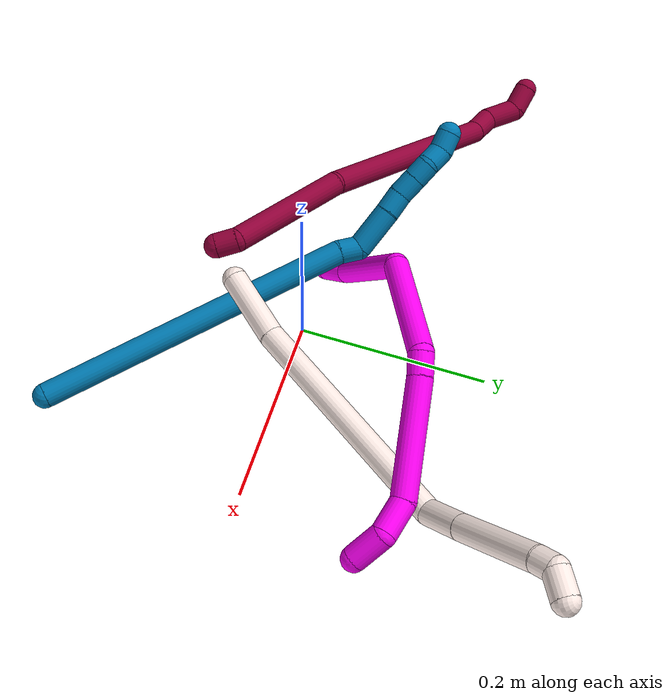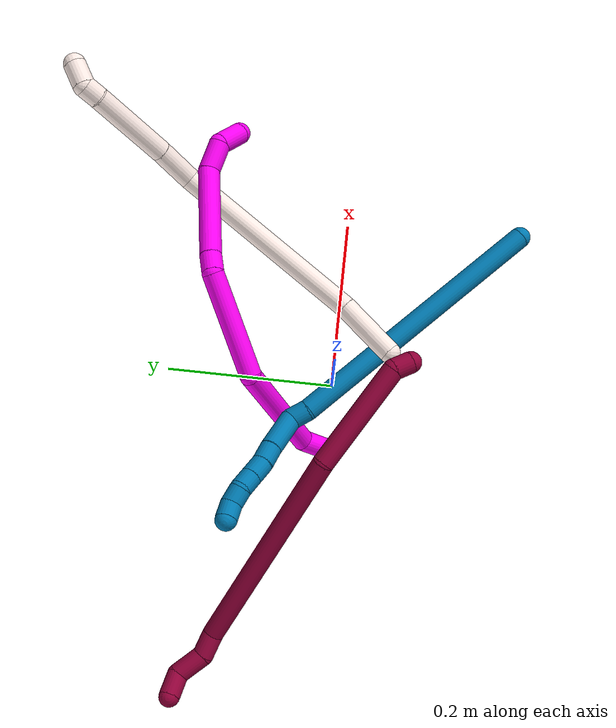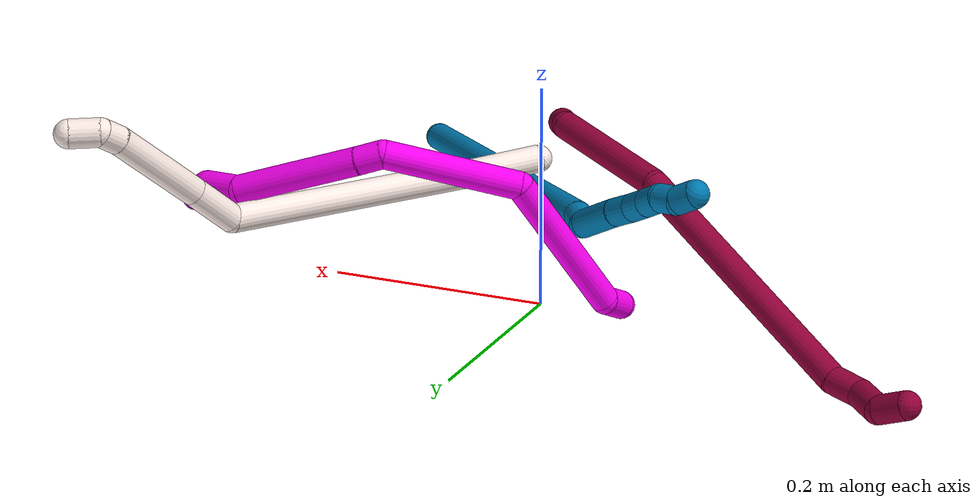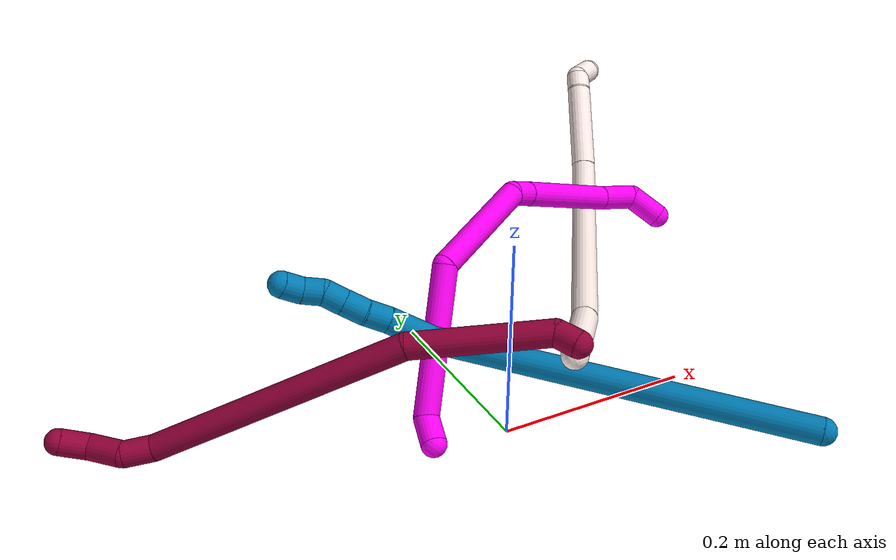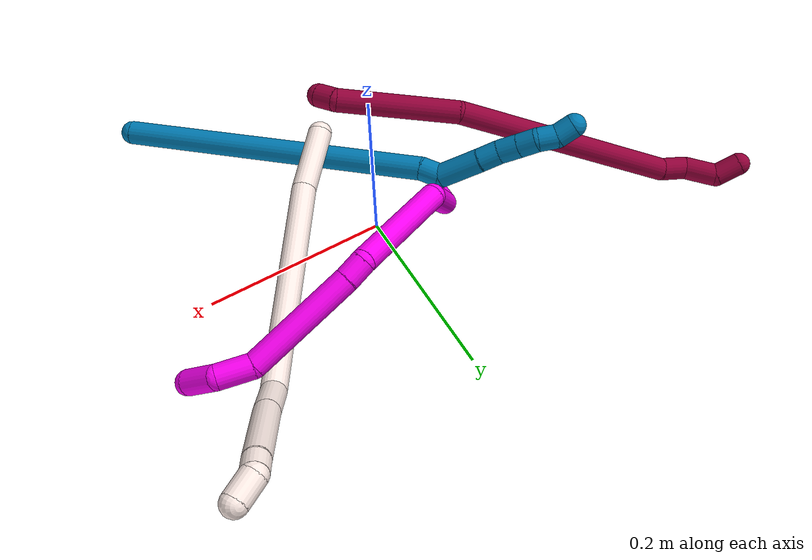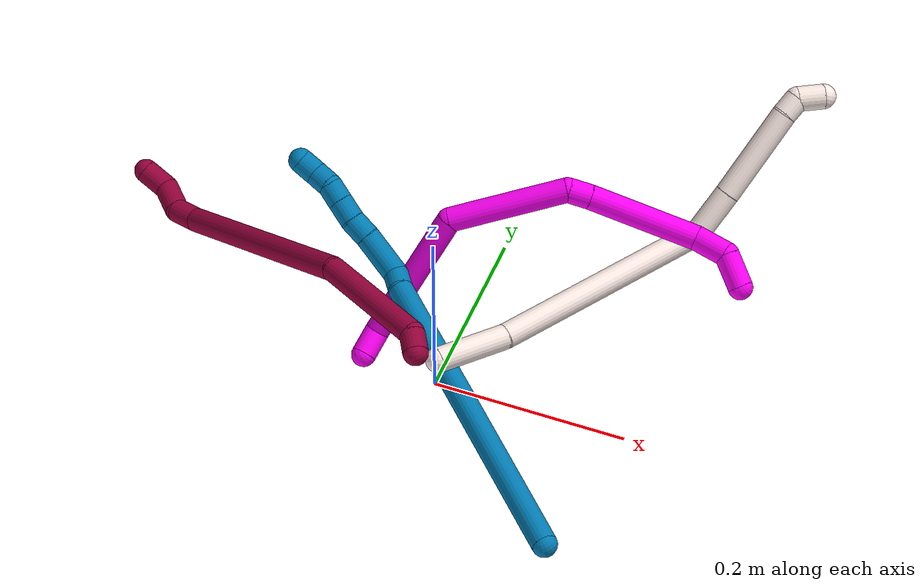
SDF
<sdf version="1.7">
 <world name="default">
  <model name="photoneo_s_sensor">
   <static>1</static>
   <pose>0 0 2 1.57079 1.57079 3.14159</pose>
   <link name="link">
    <inertial><mass>0.1</mass></inertial>
    <sensor name="sensor" type="depth">
     <update_rate>30</update_rate>
     <camera>
      <horizontal_fov>1.22</horizontal_fov>
      <image><width>1920</width><height>1200</height><format>B8G8R8</format></image>
      <clip><near>0.1</near><far>4</far></clip>
      <depth_camera><output>points</output></depth_camera>
     </camera>
     <plugin name="camera_plugin" filename="libgazebo_ros_depth_camera.so">
      <baseline>0.2</baseline>
      <alwaysOn>1</alwaysOn>
      <updateRate>0.0</updateRate>
      <cameraName>camera_ir</cameraName>
      <imageTopicName>/camera/color/image_raw</imageTopicName>
      <cameraInfoTopicName>/camera/color/camera_info</cameraInfoTopicName>
      <depthImageTopicName>/camera/depth/image_raw</depthImageTopicName>
      <depthImageCameraInfoTopicName>/camera/depth/camera_info</depthImageCameraInfoTopicName>
      <pointCloudTopicName>/camera/depth/points</pointCloudTopicName>
      <frameName>fr_optical</frameName>
      <pointCloudCutoff>0.1</pointCloudCutoff>
      <pointCloudCutoffMax>2.0</pointCloudCutoffMax>
      <distortionK1>0</distortionK1>
      <distortionK2>0</distortionK2>
      <distortionK3>0</distortionK3>
      <distortionT1>0</distortionT1>
      <distortionT2>0</distortionT2>
      <CxPrime>0</CxPrime>
      <Cx>0</Cx>
      <Cy>0</Cy>
      <focalLength>0</focalLength>
      <hackBaseline>0</hackBaseline>
     </plugin>
    </sensor>
   </link>
  </model>
  <model name="bin">
   <static>1</static>
   <link name="bottom">
    <collision name="collision-bottom">
     <pose>0 0 -0.01 0 -0 0</pose>
     <geometry><box><size>0.8 0.6 0.02</size></box></geometry>
     <surface>
      <friction><ode><mu>100</mu><mu2>100</mu2></ode></friction>
      <contact><collide_bitmask>65535</collide_bitmask></contact>
     </surface>
    </collision>
   </link>
   <link name="west_wall">
    <collision name="collision-west_wall">
     <pose>-0.41 0 0.1 0 -0 0</pose>
     <geometry><box><size>0.02 0.6 0.2</size></box></geometry>
     <surface>
      <friction><ode><mu>100</mu><mu2>100</mu2></ode></friction>
      <contact><collide_bitmask>65535</collide_bitmask></contact>
     </surface>
    </collision>
   </link>
   <link name="east_wall">
    <collision name="collision-east_wall">
     <pose>0.41 0 0.1 0 -0 0</pose>
     <geometry><box><size>0.02 0.6 0.2</size></box></geometry>
     <surface>
      <friction><ode><mu>100</mu><mu2>100</mu2></ode></friction>
      <contact><collide_bitmask>65535</collide_bitmask></contact>
     </surface>
    </collision>
   </link>
   <link name="south_wall">
    <collision name="collision-south_wall">
     <pose>0 -0.31 0.1 0 -0 0</pose>
     <geometry><box><size>0.8 0.02 0.2</size></box></geometry>
     <surface>
      <friction><ode><mu>100</mu><mu2>100</mu2></ode></friction>
      <contact><collide_bitmask>65535</collide_bitmask></contact>
     </surface>
    </collision>
   </link>
   <link name="north_wall">
    <collision name="collision-north_wall">
     <pose>0 0.31 0.1 0 -0 0</pose>
     <geometry><box><size>0.8 0.02 0.2</size></box></geometry>
     <surface>
      <friction><ode><mu>100</mu><mu2>100</mu2></ode></friction>
      <contact><collide_bitmask>65535</collide_bitmask></contact>
     </surface>
    </collision>
   </link>
  </model>
  <model name="8">
   <static>0</static>
   <link name="8">
    <collision name="collision-cylinder-e_1_1_4">
     <pose>-0.010373 -0.003014 -0.001882 2.12886 -1.24078 -1.82147</pose>
     <geometry><cylinder><radius>0.0125</radius><length>0.02193</length></cylinder></geometry>
     <surface>
      <friction><ode><mu>1.16</mu><mu2>1.16</mu2><slip1>0</slip1><slip2>0</slip2></ode></friction>
      <contact><ode><kp>1e+06</kp><kd>1</kd><max_vel>0</max_vel><min_depth>0.001</min_depth></ode></contact>
     </surface>
    </collision>
    <visual name="visual-cylinder-e_1_1_4">
     <pose>-0.010373 -0.003014 -0.001882 2.12886 -1.24078 -1.82147</pose>
     <geometry><cylinder><radius>0.0125</radius><length>0.02193</length></cylinder></geometry>
     <material><ambient>0.584314 0 0.227451 1</ambient></material>
    </visual>
    <collision name="collision-cylinder-e_2_4_5">
     <pose>-0.083397 0.00929 0.003966 -1.10352 -1.30348 0.878096</pose>
     <geometry><cylinder><radius>0.0125</radius><length>0.129915</length></cylinder></geometry>
     <surface>
      <friction><ode><mu>1.16</mu><mu2>1.16</mu2><slip1>0</slip1><slip2>0</slip2></ode></friction>
      <contact><ode><kp>1e+06</kp><kd>1</kd><max_vel>0</max_vel><min_depth>0.001</min_depth></ode></contact>
     </surface>
    </collision>
    <visual name="visual-cylinder-e_2_4_5">
     <pose>-0.083397 0.00929 0.003966 -1.10352 -1.30348 0.878096</pose>
     <geometry><cylinder><radius>0.0125</radius><length>0.129915</length></cylinder></geometry>
     <material><ambient>0.584314 0 0.227451 1</ambient></material>
    </visual>
    <collision name="collision-cylinder-e_3_5_6">
     <pose>-0.256518 0.061445 0.063422 -0.618811 -1.04908 0.365795</pose>
     <geometry><cylinder><radius>0.0125</radius><length>0.254844</length></cylinder></geometry>
     <surface>
      <friction><ode><mu>1.16</mu><mu2>1.16</mu2><slip1>0</slip1><slip2>0</slip2></ode></friction>
      <contact><ode><kp>1e+06</kp><kd>1</kd><max_vel>0</max_vel><min_depth>0.001</min_depth></ode></contact>
     </surface>
    </collision>
    <visual name="visual-cylinder-e_3_5_6">
     <pose>-0.256518 0.061445 0.063422 -0.618811 -1.04908 0.365795</pose>
     <geometry><cylinder><radius>0.0125</radius><length>0.254844</length></cylinder></geometry>
     <material><ambient>0.584314 0 0.227451 1</ambient></material>
    </visual>
    <collision name="collision-cylinder-e_4_6_7">
     <pose>-0.379889 0.10443 0.116764 -1.3141 -1.11295 0.894782</pose>
     <geometry><cylinder><radius>0.0125</radius><length>0.028765</length></cylinder></geometry>
     <surface>
      <friction><ode><mu>1.16</mu><mu2>1.16</mu2><slip1>0</slip1><slip2>0</slip2></ode></friction>
      <contact><ode><kp>1e+06</kp><kd>1</kd><max_vel>0</max_vel><min_depth>0.001</min_depth></ode></contact>
     </surface>
    </collision>
    <visual name="visual-cylinder-e_4_6_7">
     <pose>-0.379889 0.10443 0.116764 -1.3141 -1.11295 0.894782</pose>
     <geometry><cylinder><radius>0.0125</radius><length>0.028765</length></cylinder></geometry>
     <material><ambient>0.584314 0 0.227451 1</ambient></material>
    </visual>
    <collision name="collision-cylinder-e_5_7_8">
     <pose>-0.410781 0.109583 0.118742 1.22056 -1.51193 -1.16582</pose>
     <geometry><cylinder><radius>0.0125</radius><length>0.036044</length></cylinder></geometry>
     <surface>
      <friction><ode><mu>1.16</mu><mu2>1.16</mu2><slip1>0</slip1><slip2>0</slip2></ode></friction>
      <contact><ode><kp>1e+06</kp><kd>1</kd><max_vel>0</max_vel><min_depth>0.001</min_depth></ode></contact>
     </surface>
    </collision>
    <visual name="visual-cylinder-e_5_7_8">
     <pose>-0.410781 0.109583 0.118742 1.22056 -1.51193 -1.16582</pose>
     <geometry><cylinder><radius>0.0125</radius><length>0.036044</length></cylinder></geometry>
     <material><ambient>0.584314 0 0.227451 1</ambient></material>
    </visual>
    <collision name="collision-cylinder-e_6_8_2">
     <pose>-0.440087 0.114985 0.113264 -2.3108 -0.917359 1.68351</pose>
     <geometry><cylinder><radius>0.0125</radius><length>0.028503</length></cylinder></geometry>
     <surface>
      <friction><ode><mu>1.16</mu><mu2>1.16</mu2><slip1>0</slip1><slip2>0</slip2></ode></friction>
      <contact><ode><kp>1e+06</kp><kd>1</kd><max_vel>0</max_vel><min_depth>0.001</min_depth></ode></contact>
     </surface>
    </collision>
    <visual name="visual-cylinder-e_6_8_2">
     <pose>-0.440087 0.114985 0.113264 -2.3108 -0.917359 1.68351</pose>
     <geometry><cylinder><radius>0.0125</radius><length>0.028503</length></cylinder></geometry>
     <material><ambient>0.584314 0 0.227451 1</ambient></material>
    </visual>
    <collision name="collision-sphere-2">
     <pose>-0.451403 0.121383 0.107422 0 -0 0</pose>
     <geometry><sphere><radius>0.0125</radius></sphere></geometry>
     <surface>
      <friction><ode><mu>1.16</mu><mu2>1.16</mu2><slip1>0</slip1><slip2>0</slip2></ode></friction>
      <contact><ode><kp>1e+06</kp><kd>1</kd><max_vel>0</max_vel><min_depth>0.001</min_depth></ode></contact>
     </surface>
    </collision>
    <visual name="visual-sphere-2">
     <pose>-0.451403 0.121383 0.107422 0 -0 0</pose>
     <geometry><sphere><radius>0.0125</radius></sphere></geometry>
     <material><ambient>0.584314 0 0.227451 1</ambient></material>
    </visual>
    <collision name="collision-sphere-4">
     <pose>-0.020747 -0.006028 -0.003763 0 -0 0</pose>
     <geometry><sphere><radius>0.0125</radius></sphere></geometry>
     <surface>
      <friction><ode><mu>1.16</mu><mu2>1.16</mu2><slip1>0</slip1><slip2>0</slip2></ode></friction>
      <contact><ode><kp>1e+06</kp><kd>1</kd><max_vel>0</max_vel><min_depth>0.001</min_depth></ode></contact>
     </surface>
    </collision>
    <visual name="visual-sphere-4">
     <pose>-0.020747 -0.006028 -0.003763 0 -0 0</pose>
     <geometry><sphere><radius>0.0125</radius></sphere></geometry>
     <material><ambient>0.584314 0 0.227451 1</ambient></material>
    </visual>
    <collision name="collision-sphere-1">
     <geometry><sphere><radius>0.0125</radius></sphere></geometry>
     <surface>
      <friction><ode><mu>1.16</mu><mu2>1.16</mu2><slip1>0</slip1><slip2>0</slip2></ode></friction>
      <contact><ode><kp>1e+06</kp><kd>1</kd><max_vel>0</max_vel><min_depth>0.001</min_depth></ode></contact>
     </surface>
    </collision>
    <visual name="visual-sphere-1">
     <geometry><sphere><radius>0.0125</radius></sphere></geometry>
     <material><ambient>0.584314 0 0.227451 1</ambient></material>
    </visual>
    <collision name="collision-sphere-8">
     <pose>-0.428771 0.108587 0.119106 0 -0 0</pose>
     <geometry><sphere><radius>0.0125</radius></sphere></geometry>
     <surface>
      <friction><ode><mu>1.16</mu><mu2>1.16</mu2><slip1>0</slip1><slip2>0</slip2></ode></friction>
      <contact><ode><kp>1e+06</kp><kd>1</kd><max_vel>0</max_vel><min_depth>0.001</min_depth></ode></contact>
     </surface>
    </collision>
    <visual name="visual-sphere-8">
     <pose>-0.428771 0.108587 0.119106 0 -0 0</pose>
     <geometry><sphere><radius>0.0125</radius></sphere></geometry>
     <material><ambient>0.584314 0 0.227451 1</ambient></material>
    </visual>
    <collision name="collision-sphere-5">
     <pose>-0.146047 0.024609 0.011695 0 -0 0</pose>
     <geometry><sphere><radius>0.0125</radius></sphere></geometry>
     <surface>
      <friction><ode><mu>1.16</mu><mu2>1.16</mu2><slip1>0</slip1><slip2>0</slip2></ode></friction>
      <contact><ode><kp>1e+06</kp><kd>1</kd><max_vel>0</max_vel><min_depth>0.001</min_depth></ode></contact>
     </surface>
    </collision>
    <visual name="visual-sphere-5">
     <pose>-0.146047 0.024609 0.011695 0 -0 0</pose>
     <geometry><sphere><radius>0.0125</radius></sphere></geometry>
     <material><ambient>0.584314 0 0.227451 1</ambient></material>
    </visual>
    <collision name="collision-sphere-6">
     <pose>-0.366988 0.098281 0.11515 0 -0 0</pose>
     <geometry><sphere><radius>0.0125</radius></sphere></geometry>
     <surface>
      <friction><ode><mu>1.16</mu><mu2>1.16</mu2><slip1>0</slip1><slip2>0</slip2></ode></friction>
      <contact><ode><kp>1e+06</kp><kd>1</kd><max_vel>0</max_vel><min_depth>0.001</min_depth></ode></contact>
     </surface>
    </collision>
    <visual name="visual-sphere-6">
     <pose>-0.366988 0.098281 0.11515 0 -0 0</pose>
     <geometry><sphere><radius>0.0125</radius></sphere></geometry>
     <material><ambient>0.584314 0 0.227451 1</ambient></material>
    </visual>
    <collision name="collision-sphere-7">
     <pose>-0.39279 0.110579 0.118378 0 -0 0</pose>
     <geometry><sphere><radius>0.0125</radius></sphere></geometry>
     <surface>
      <friction><ode><mu>1.16</mu><mu2>1.16</mu2><slip1>0</slip1><slip2>0</slip2></ode></friction>
      <contact><ode><kp>1e+06</kp><kd>1</kd><max_vel>0</max_vel><min_depth>0.001</min_depth></ode></contact>
     </surface>
    </collision>
    <visual name="visual-sphere-7">
     <pose>-0.39279 0.110579 0.118378 0 -0 0</pose>
     <geometry><sphere><radius>0.0125</radius></sphere></geometry>
     <material><ambient>0.584314 0 0.227451 1</ambient></material>
    </visual>
    <inertial>
     <pose>-0.229422 0.054062 0.055007 0 -0 0</pose>
     <mass>0.5</mass>
     <inertia>
      <ixx>0.000931</ixx>
      <ixy>0</ixy>
      <ixz>0</ixz>
      <iyy>0.001794</iyy>
      <iyz>0</iyz>
      <izz>0.000958</izz>
     </inertia>
    </inertial>
   </link>
   <pose>0.014892 -0.084278 0.142694 -3.06044 -0.008599 -0.774768</pose>
  </model>
  <model name="9">
   <static>0</static>
   <link name="9">
    <collision name="collision-cylinder-e_1_1_4">
     <pose>-0.096883 0.111463 0.070412 -1.00739 -0.633736 0.357577</pose>
     <geometry><cylinder><radius>0.0125</radius><length>0.32722</length></cylinder></geometry>
     <surface>
      <friction><ode><mu>1.16</mu><mu2>1.16</mu2><slip1>0</slip1><slip2>0</slip2></ode></friction>
      <contact><ode><kp>1e+06</kp><kd>1</kd><max_vel>0</max_vel><min_depth>0.001</min_depth></ode></contact>
     </surface>
    </collision>
    <visual name="visual-cylinder-e_1_1_4">
     <pose>-0.096883 0.111463 0.070412 -1.00739 -0.633736 0.357577</pose>
     <geometry><cylinder><radius>0.0125</radius><length>0.32722</length></cylinder></geometry>
     <material><ambient>0 0.490196 0.709804 1</ambient></material>
    </visual>
    <collision name="collision-cylinder-e_2_4_5">
     <pose>-0.199269 0.231986 0.143776 -1.25579 -0.523752 0.384324</pose>
     <geometry><cylinder><radius>0.0125</radius><length>0.022006</length></cylinder></geometry>
     <surface>
      <friction><ode><mu>1.16</mu><mu2>1.16</mu2><slip1>0</slip1><slip2>0</slip2></ode></friction>
      <contact><ode><kp>1e+06</kp><kd>1</kd><max_vel>0</max_vel><min_depth>0.001</min_depth></ode></contact>
     </surface>
    </collision>
    <visual name="visual-cylinder-e_2_4_5">
     <pose>-0.199269 0.231986 0.143776 -1.25579 -0.523752 0.384324</pose>
     <geometry><cylinder><radius>0.0125</radius><length>0.022006</length></cylinder></geometry>
     <material><ambient>0 0.490196 0.709804 1</ambient></material>
    </visual>
    <collision name="collision-cylinder-e_3_5_6">
     <pose>-0.216726 0.248996 0.164839 -0.413673 -0.543596 0.116828</pose>
     <geometry><cylinder><radius>0.0125</radius><length>0.046223</length></cylinder></geometry>
     <surface>
      <friction><ode><mu>1.16</mu><mu2>1.16</mu2><slip1>0</slip1><slip2>0</slip2></ode></friction>
      <contact><ode><kp>1e+06</kp><kd>1</kd><max_vel>0</max_vel><min_depth>0.001</min_depth></ode></contact>
     </surface>
    </collision>
    <visual name="visual-cylinder-e_3_5_6">
     <pose>-0.216726 0.248996 0.164839 -0.413673 -0.543596 0.116828</pose>
     <geometry><cylinder><radius>0.0125</radius><length>0.046223</length></cylinder></geometry>
     <material><ambient>0 0.490196 0.709804 1</ambient></material>
    </visual>
    <collision name="collision-cylinder-e_4_6_7">
     <pose>-0.235248 0.26016 0.191341 -0.365715 -0.631319 0.120638</pose>
     <geometry><cylinder><radius>0.0125</radius><length>0.022261</length></cylinder></geometry>
     <surface>
      <friction><ode><mu>1.16</mu><mu2>1.16</mu2><slip1>0</slip1><slip2>0</slip2></ode></friction>
      <contact><ode><kp>1e+06</kp><kd>1</kd><max_vel>0</max_vel><min_depth>0.001</min_depth></ode></contact>
     </surface>
    </collision>
    <visual name="visual-cylinder-e_4_6_7">
     <pose>-0.235248 0.26016 0.191341 -0.365715 -0.631319 0.120638</pose>
     <geometry><cylinder><radius>0.0125</radius><length>0.022261</length></cylinder></geometry>
     <material><ambient>0 0.490196 0.709804 1</ambient></material>
    </visual>
    <collision name="collision-cylinder-e_5_7_8">
     <pose>-0.24725 0.268092 0.208203 -0.508249 -0.510673 0.135395</pose>
     <geometry><cylinder><radius>0.0125</radius><length>0.022229</length></cylinder></geometry>
     <surface>
      <friction><ode><mu>1.16</mu><mu2>1.16</mu2><slip1>0</slip1><slip2>0</slip2></ode></friction>
      <contact><ode><kp>1e+06</kp><kd>1</kd><max_vel>0</max_vel><min_depth>0.001</min_depth></ode></contact>
     </surface>
    </collision>
    <visual name="visual-cylinder-e_5_7_8">
     <pose>-0.24725 0.268092 0.208203 -0.508249 -0.510673 0.135395</pose>
     <geometry><cylinder><radius>0.0125</radius><length>0.022229</length></cylinder></geometry>
     <material><ambient>0 0.490196 0.709804 1</ambient></material>
    </visual>
    <collision name="collision-cylinder-e_6_8_9">
     <pose>-0.25744 0.276975 0.22444 -0.492193 -0.495045 0.126783</pose>
     <geometry><cylinder><radius>0.0125</radius><length>0.020031</length></cylinder></geometry>
     <surface>
      <friction><ode><mu>1.16</mu><mu2>1.16</mu2><slip1>0</slip1><slip2>0</slip2></ode></friction>
      <contact><ode><kp>1e+06</kp><kd>1</kd><max_vel>0</max_vel><min_depth>0.001</min_depth></ode></contact>
     </surface>
    </collision>
    <visual name="visual-cylinder-e_6_8_9">
     <pose>-0.25744 0.276975 0.22444 -0.492193 -0.495045 0.126783</pose>
     <geometry><cylinder><radius>0.0125</radius><length>0.020031</length></cylinder></geometry>
     <material><ambient>0 0.490196 0.709804 1</ambient></material>
    </visual>
    <collision name="collision-cylinder-e_7_9_10">
     <pose>-0.269729 0.285044 0.237515 -0.634215 -0.852018 0.295685</pose>
     <geometry><cylinder><radius>0.0125</radius><length>0.020013</length></cylinder></geometry>
     <surface>
      <friction><ode><mu>1.16</mu><mu2>1.16</mu2><slip1>0</slip1><slip2>0</slip2></ode></friction>
      <contact><ode><kp>1e+06</kp><kd>1</kd><max_vel>0</max_vel><min_depth>0.001</min_depth></ode></contact>
     </surface>
    </collision>
    <visual name="visual-cylinder-e_7_9_10">
     <pose>-0.269729 0.285044 0.237515 -0.634215 -0.852018 0.295685</pose>
     <geometry><cylinder><radius>0.0125</radius><length>0.020013</length></cylinder></geometry>
     <material><ambient>0 0.490196 0.709804 1</ambient></material>
    </visual>
    <collision name="collision-cylinder-e_8_10_2">
     <pose>-0.283282 0.290064 0.25074 -0.139972 -0.645486 0.04688</pose>
     <geometry><cylinder><radius>0.0125</radius><length>0.020019</length></cylinder></geometry>
     <surface>
      <friction><ode><mu>1.16</mu><mu2>1.16</mu2><slip1>0</slip1><slip2>0</slip2></ode></friction>
      <contact><ode><kp>1e+06</kp><kd>1</kd><max_vel>0</max_vel><min_depth>0.001</min_depth></ode></contact>
     </surface>
    </collision>
    <visual name="visual-cylinder-e_8_10_2">
     <pose>-0.283282 0.290064 0.25074 -0.139972 -0.645486 0.04688</pose>
     <geometry><cylinder><radius>0.0125</radius><length>0.020019</length></cylinder></geometry>
     <material><ambient>0 0.490196 0.709804 1</ambient></material>
    </visual>
    <collision name="collision-sphere-2">
     <pose>-0.289303 0.291179 0.258657 0 -0 0</pose>
     <geometry><sphere><radius>0.0125</radius></sphere></geometry>
     <surface>
      <friction><ode><mu>1.16</mu><mu2>1.16</mu2><slip1>0</slip1><slip2>0</slip2></ode></friction>
      <contact><ode><kp>1e+06</kp><kd>1</kd><max_vel>0</max_vel><min_depth>0.001</min_depth></ode></contact>
     </surface>
    </collision>
    <visual name="visual-sphere-2">
     <pose>-0.289303 0.291179 0.258657 0 -0 0</pose>
     <geometry><sphere><radius>0.0125</radius></sphere></geometry>
     <material><ambient>0 0.490196 0.709804 1</ambient></material>
    </visual>
    <collision name="collision-sphere-10">
     <pose>-0.27726 0.288948 0.242822 0 -0 0</pose>
     <geometry><sphere><radius>0.0125</radius></sphere></geometry>
     <surface>
      <friction><ode><mu>1.16</mu><mu2>1.16</mu2><slip1>0</slip1><slip2>0</slip2></ode></friction>
      <contact><ode><kp>1e+06</kp><kd>1</kd><max_vel>0</max_vel><min_depth>0.001</min_depth></ode></contact>
     </surface>
    </collision>
    <visual name="visual-sphere-10">
     <pose>-0.27726 0.288948 0.242822 0 -0 0</pose>
     <geometry><sphere><radius>0.0125</radius></sphere></geometry>
     <material><ambient>0 0.490196 0.709804 1</ambient></material>
    </visual>
    <collision name="collision-sphere-9">
     <pose>-0.262198 0.28114 0.232207 0 -0 0</pose>
     <geometry><sphere><radius>0.0125</radius></sphere></geometry>
     <surface>
      <friction><ode><mu>1.16</mu><mu2>1.16</mu2><slip1>0</slip1><slip2>0</slip2></ode></friction>
      <contact><ode><kp>1e+06</kp><kd>1</kd><max_vel>0</max_vel><min_depth>0.001</min_depth></ode></contact>
     </surface>
    </collision>
    <visual name="visual-sphere-9">
     <pose>-0.262198 0.28114 0.232207 0 -0 0</pose>
     <geometry><sphere><radius>0.0125</radius></sphere></geometry>
     <material><ambient>0 0.490196 0.709804 1</ambient></material>
    </visual>
    <collision name="collision-sphere-4">
     <pose>-0.193766 0.222927 0.140824 0 -0 0</pose>
     <geometry><sphere><radius>0.0125</radius></sphere></geometry>
     <surface>
      <friction><ode><mu>1.16</mu><mu2>1.16</mu2><slip1>0</slip1><slip2>0</slip2></ode></friction>
      <contact><ode><kp>1e+06</kp><kd>1</kd><max_vel>0</max_vel><min_depth>0.001</min_depth></ode></contact>
     </surface>
    </collision>
    <visual name="visual-sphere-4">
     <pose>-0.193766 0.222927 0.140824 0 -0 0</pose>
     <geometry><sphere><radius>0.0125</radius></sphere></geometry>
     <material><ambient>0 0.490196 0.709804 1</ambient></material>
    </visual>
    <collision name="collision-sphere-1">
     <geometry><sphere><radius>0.0125</radius></sphere></geometry>
     <surface>
      <friction><ode><mu>1.16</mu><mu2>1.16</mu2><slip1>0</slip1><slip2>0</slip2></ode></friction>
      <contact><ode><kp>1e+06</kp><kd>1</kd><max_vel>0</max_vel><min_depth>0.001</min_depth></ode></contact>
     </surface>
    </collision>
    <visual name="visual-sphere-1">
     <geometry><sphere><radius>0.0125</radius></sphere></geometry>
     <material><ambient>0 0.490196 0.709804 1</ambient></material>
    </visual>
    <collision name="collision-sphere-8">
     <pose>-0.252682 0.272811 0.216673 0 -0 0</pose>
     <geometry><sphere><radius>0.0125</radius></sphere></geometry>
     <surface>
      <friction><ode><mu>1.16</mu><mu2>1.16</mu2><slip1>0</slip1><slip2>0</slip2></ode></friction>
      <contact><ode><kp>1e+06</kp><kd>1</kd><max_vel>0</max_vel><min_depth>0.001</min_depth></ode></contact>
     </surface>
    </collision>
    <visual name="visual-sphere-8">
     <pose>-0.252682 0.272811 0.216673 0 -0 0</pose>
     <geometry><sphere><radius>0.0125</radius></sphere></geometry>
     <material><ambient>0 0.490196 0.709804 1</ambient></material>
    </visual>
    <collision name="collision-sphere-5">
     <pose>-0.204772 0.241045 0.146727 0 -0 0</pose>
     <geometry><sphere><radius>0.0125</radius></sphere></geometry>
     <surface>
      <friction><ode><mu>1.16</mu><mu2>1.16</mu2><slip1>0</slip1><slip2>0</slip2></ode></friction>
      <contact><ode><kp>1e+06</kp><kd>1</kd><max_vel>0</max_vel><min_depth>0.001</min_depth></ode></contact>
     </surface>
    </collision>
    <visual name="visual-sphere-5">
     <pose>-0.204772 0.241045 0.146727 0 -0 0</pose>
     <geometry><sphere><radius>0.0125</radius></sphere></geometry>
     <material><ambient>0 0.490196 0.709804 1</ambient></material>
    </visual>
    <collision name="collision-sphere-6">
     <pose>-0.228679 0.256947 0.18295 0 -0 0</pose>
     <geometry><sphere><radius>0.0125</radius></sphere></geometry>
     <surface>
      <friction><ode><mu>1.16</mu><mu2>1.16</mu2><slip1>0</slip1><slip2>0</slip2></ode></friction>
      <contact><ode><kp>1e+06</kp><kd>1</kd><max_vel>0</max_vel><min_depth>0.001</min_depth></ode></contact>
     </surface>
    </collision>
    <visual name="visual-sphere-6">
     <pose>-0.228679 0.256947 0.18295 0 -0 0</pose>
     <geometry><sphere><radius>0.0125</radius></sphere></geometry>
     <material><ambient>0 0.490196 0.709804 1</ambient></material>
    </visual>
    <collision name="collision-sphere-7">
     <pose>-0.241818 0.263373 0.199732 0 -0 0</pose>
     <geometry><sphere><radius>0.0125</radius></sphere></geometry>
     <surface>
      <friction><ode><mu>1.16</mu><mu2>1.16</mu2><slip1>0</slip1><slip2>0</slip2></ode></friction>
      <contact><ode><kp>1e+06</kp><kd>1</kd><max_vel>0</max_vel><min_depth>0.001</min_depth></ode></contact>
     </surface>
    </collision>
    <visual name="visual-sphere-7">
     <pose>-0.241818 0.263373 0.199732 0 -0 0</pose>
     <geometry><sphere><radius>0.0125</radius></sphere></geometry>
     <material><ambient>0 0.490196 0.709804 1</ambient></material>
    </visual>
    <inertial>
     <pose>-0.146127 0.163794 0.113959 0 -0 0</pose>
     <mass>0.5</mass>
     <inertia>
      <ixx>0.003037</ixx>
      <ixy>0</ixy>
      <ixz>0</ixz>
      <iyy>0.002851</iyy>
      <iyz>0</iyz>
      <izz>-0.000238</izz>
     </inertia>
    </inertial>
   </link>
   <pose>0.189169 -0.202778 0.070725 -0.099999 -0.426447 0.037539</pose>
  </model>
  <model name="10">
   <static>0</static>
   <link name="10">
    <collision name="collision-cylinder-e_1_1_4">
     <pose>0.00393 0.010292 0.008756 -0.865879 0.282992 -0.131484</pose>
     <geometry><cylinder><radius>0.0125</radius><length>0.028145</length></cylinder></geometry>
     <surface>
      <friction><ode><mu>1.16</mu><mu2>1.16</mu2><slip1>0</slip1><slip2>0</slip2></ode></friction>
      <contact><ode><kp>1e+06</kp><kd>1</kd><max_vel>0</max_vel><min_depth>0.001</min_depth></ode></contact>
     </surface>
    </collision>
    <visual name="visual-cylinder-e_1_1_4">
     <pose>0.00393 0.010292 0.008756 -0.865879 0.282992 -0.131484</pose>
     <geometry><cylinder><radius>0.0125</radius><length>0.028145</length></cylinder></geometry>
     <material><ambient>1 0 0.964706 1</ambient></material>
    </visual>
    <collision name="collision-cylinder-e_2_4_5">
     <pose>-0.004725 0.050232 0.082189 -0.429809 -0.175063 0.038305</pose>
     <geometry><cylinder><radius>0.0125</radius><length>0.144505</length></cylinder></geometry>
     <surface>
      <friction><ode><mu>1.16</mu><mu2>1.16</mu2><slip1>0</slip1><slip2>0</slip2></ode></friction>
      <contact><ode><kp>1e+06</kp><kd>1</kd><max_vel>0</max_vel><min_depth>0.001</min_depth></ode></contact>
     </surface>
    </collision>
    <visual name="visual-cylinder-e_2_4_5">
     <pose>-0.004725 0.050232 0.082189 -0.429809 -0.175063 0.038305</pose>
     <geometry><cylinder><radius>0.0125</radius><length>0.144505</length></cylinder></geometry>
     <material><ambient>1 0 0.964706 1</ambient></material>
    </visual>
    <collision name="collision-cylinder-e_3_5_6">
     <pose>0.007935 0.076852 0.201545 0.055318 0.43195 0.012139</pose>
     <geometry><cylinder><radius>0.0125</radius><length>0.120603</length></cylinder></geometry>
     <surface>
      <friction><ode><mu>1.16</mu><mu2>1.16</mu2><slip1>0</slip1><slip2>0</slip2></ode></friction>
      <contact><ode><kp>1e+06</kp><kd>1</kd><max_vel>0</max_vel><min_depth>0.001</min_depth></ode></contact>
     </surface>
    </collision>
    <visual name="visual-cylinder-e_3_5_6">
     <pose>0.007935 0.076852 0.201545 0.055318 0.43195 0.012139</pose>
     <geometry><cylinder><radius>0.0125</radius><length>0.120603</length></cylinder></geometry>
     <material><ambient>1 0 0.964706 1</ambient></material>
    </visual>
    <collision name="collision-cylinder-e_4_6_7">
     <pose>0.041621 0.069036 0.26255 0.647888 0.816423 0.288431</pose>
     <geometry><cylinder><radius>0.0125</radius><length>0.023167</length></cylinder></geometry>
     <surface>
      <friction><ode><mu>1.16</mu><mu2>1.16</mu2><slip1>0</slip1><slip2>0</slip2></ode></friction>
      <contact><ode><kp>1e+06</kp><kd>1</kd><max_vel>0</max_vel><min_depth>0.001</min_depth></ode></contact>
     </surface>
    </collision>
    <visual name="visual-cylinder-e_4_6_7">
     <pose>0.041621 0.069036 0.26255 0.647888 0.816423 0.288431</pose>
     <geometry><cylinder><radius>0.0125</radius><length>0.023167</length></cylinder></geometry>
     <material><ambient>1 0 0.964706 1</ambient></material>
    </visual>
    <collision name="collision-cylinder-e_5_7_8">
     <pose>0.088757 0.036375 0.299338 0.741057 0.75296 0.304773</pose>
     <geometry><cylinder><radius>0.0125</radius><length>0.113178</length></cylinder></geometry>
     <surface>
      <friction><ode><mu>1.16</mu><mu2>1.16</mu2><slip1>0</slip1><slip2>0</slip2></ode></friction>
      <contact><ode><kp>1e+06</kp><kd>1</kd><max_vel>0</max_vel><min_depth>0.001</min_depth></ode></contact>
     </surface>
    </collision>
    <visual name="visual-cylinder-e_5_7_8">
     <pose>0.088757 0.036375 0.299338 0.741057 0.75296 0.304773</pose>
     <geometry><cylinder><radius>0.0125</radius><length>0.113178</length></cylinder></geometry>
     <material><ambient>1 0 0.964706 1</ambient></material>
    </visual>
    <collision name="collision-cylinder-e_6_8_9">
     <pose>0.132927 -0.004409 0.340537 0.877003 0.31516 0.148755</pose>
     <geometry><cylinder><radius>0.0125</radius><length>0.035322</length></cylinder></geometry>
     <surface>
      <friction><ode><mu>1.16</mu><mu2>1.16</mu2><slip1>0</slip1><slip2>0</slip2></ode></friction>
      <contact><ode><kp>1e+06</kp><kd>1</kd><max_vel>0</max_vel><min_depth>0.001</min_depth></ode></contact>
     </surface>
    </collision>
    <visual name="visual-cylinder-e_6_8_9">
     <pose>0.132927 -0.004409 0.340537 0.877003 0.31516 0.148755</pose>
     <geometry><cylinder><radius>0.0125</radius><length>0.035322</length></cylinder></geometry>
     <material><ambient>1 0 0.964706 1</ambient></material>
    </visual>
    <collision name="collision-cylinder-e_7_9_2">
     <pose>0.143972 -0.033942 0.350731 1.6035 0.323166 0.333715</pose>
     <geometry><cylinder><radius>0.0125</radius><length>0.03508</length></cylinder></geometry>
     <surface>
      <friction><ode><mu>1.16</mu><mu2>1.16</mu2><slip1>0</slip1><slip2>0</slip2></ode></friction>
      <contact><ode><kp>1e+06</kp><kd>1</kd><max_vel>0</max_vel><min_depth>0.001</min_depth></ode></contact>
     </surface>
    </collision>
    <visual name="visual-cylinder-e_7_9_2">
     <pose>0.143972 -0.033942 0.350731 1.6035 0.323166 0.333715</pose>
     <geometry><cylinder><radius>0.0125</radius><length>0.03508</length></cylinder></geometry>
     <material><ambient>1 0 0.964706 1</ambient></material>
    </visual>
    <collision name="collision-sphere-2">
     <pose>0.149542 -0.050565 0.350187 0 -0 0</pose>
     <geometry><sphere><radius>0.0125</radius></sphere></geometry>
     <surface>
      <friction><ode><mu>1.16</mu><mu2>1.16</mu2><slip1>0</slip1><slip2>0</slip2></ode></friction>
      <contact><ode><kp>1e+06</kp><kd>1</kd><max_vel>0</max_vel><min_depth>0.001</min_depth></ode></contact>
     </surface>
    </collision>
    <visual name="visual-sphere-2">
     <pose>0.149542 -0.050565 0.350187 0 -0 0</pose>
     <geometry><sphere><radius>0.0125</radius></sphere></geometry>
     <material><ambient>1 0 0.964706 1</ambient></material>
    </visual>
    <collision name="collision-sphere-9">
     <pose>0.138402 -0.017318 0.351275 0 -0 0</pose>
     <geometry><sphere><radius>0.0125</radius></sphere></geometry>
     <surface>
      <friction><ode><mu>1.16</mu><mu2>1.16</mu2><slip1>0</slip1><slip2>0</slip2></ode></friction>
      <contact><ode><kp>1e+06</kp><kd>1</kd><max_vel>0</max_vel><min_depth>0.001</min_depth></ode></contact>
     </surface>
    </collision>
    <visual name="visual-sphere-9">
     <pose>0.138402 -0.017318 0.351275 0 -0 0</pose>
     <geometry><sphere><radius>0.0125</radius></sphere></geometry>
     <material><ambient>1 0 0.964706 1</ambient></material>
    </visual>
    <collision name="collision-sphere-4">
     <pose>0.007859 0.020585 0.017512 0 -0 0</pose>
     <geometry><sphere><radius>0.0125</radius></sphere></geometry>
     <surface>
      <friction><ode><mu>1.16</mu><mu2>1.16</mu2><slip1>0</slip1><slip2>0</slip2></ode></friction>
      <contact><ode><kp>1e+06</kp><kd>1</kd><max_vel>0</max_vel><min_depth>0.001</min_depth></ode></contact>
     </surface>
    </collision>
    <visual name="visual-sphere-4">
     <pose>0.007859 0.020585 0.017512 0 -0 0</pose>
     <geometry><sphere><radius>0.0125</radius></sphere></geometry>
     <material><ambient>1 0 0.964706 1</ambient></material>
    </visual>
    <collision name="collision-sphere-1">
     <geometry><sphere><radius>0.0125</radius></sphere></geometry>
     <surface>
      <friction><ode><mu>1.16</mu><mu2>1.16</mu2><slip1>0</slip1><slip2>0</slip2></ode></friction>
      <contact><ode><kp>1e+06</kp><kd>1</kd><max_vel>0</max_vel><min_depth>0.001</min_depth></ode></contact>
     </surface>
    </collision>
    <visual name="visual-sphere-1">
     <geometry><sphere><radius>0.0125</radius></sphere></geometry>
     <material><ambient>1 0 0.964706 1</ambient></material>
    </visual>
    <collision name="collision-sphere-8">
     <pose>0.127453 0.0085 0.3298 0 -0 0</pose>
     <geometry><sphere><radius>0.0125</radius></sphere></geometry>
     <surface>
      <friction><ode><mu>1.16</mu><mu2>1.16</mu2><slip1>0</slip1><slip2>0</slip2></ode></friction>
      <contact><ode><kp>1e+06</kp><kd>1</kd><max_vel>0</max_vel><min_depth>0.001</min_depth></ode></contact>
     </surface>
    </collision>
    <visual name="visual-sphere-8">
     <pose>0.127453 0.0085 0.3298 0 -0 0</pose>
     <geometry><sphere><radius>0.0125</radius></sphere></geometry>
     <material><ambient>1 0 0.964706 1</ambient></material>
    </visual>
    <collision name="collision-sphere-5">
     <pose>-0.017309 0.079879 0.146866 0 -0 0</pose>
     <geometry><sphere><radius>0.0125</radius></sphere></geometry>
     <surface>
      <friction><ode><mu>1.16</mu><mu2>1.16</mu2><slip1>0</slip1><slip2>0</slip2></ode></friction>
      <contact><ode><kp>1e+06</kp><kd>1</kd><max_vel>0</max_vel><min_depth>0.001</min_depth></ode></contact>
     </surface>
    </collision>
    <visual name="visual-sphere-5">
     <pose>-0.017309 0.079879 0.146866 0 -0 0</pose>
     <geometry><sphere><radius>0.0125</radius></sphere></geometry>
     <material><ambient>1 0 0.964706 1</ambient></material>
    </visual>
    <collision name="collision-sphere-6">
     <pose>0.03318 0.073824 0.256224 0 -0 0</pose>
     <geometry><sphere><radius>0.0125</radius></sphere></geometry>
     <surface>
      <friction><ode><mu>1.16</mu><mu2>1.16</mu2><slip1>0</slip1><slip2>0</slip2></ode></friction>
      <contact><ode><kp>1e+06</kp><kd>1</kd><max_vel>0</max_vel><min_depth>0.001</min_depth></ode></contact>
     </surface>
    </collision>
    <visual name="visual-sphere-6">
     <pose>0.03318 0.073824 0.256224 0 -0 0</pose>
     <geometry><sphere><radius>0.0125</radius></sphere></geometry>
     <material><ambient>1 0 0.964706 1</ambient></material>
    </visual>
    <collision name="collision-sphere-7">
     <pose>0.050062 0.064249 0.268875 0 -0 0</pose>
     <geometry><sphere><radius>0.0125</radius></sphere></geometry>
     <surface>
      <friction><ode><mu>1.16</mu><mu2>1.16</mu2><slip1>0</slip1><slip2>0</slip2></ode></friction>
      <contact><ode><kp>1e+06</kp><kd>1</kd><max_vel>0</max_vel><min_depth>0.001</min_depth></ode></contact>
     </surface>
    </collision>
    <visual name="visual-sphere-7">
     <pose>0.050062 0.064249 0.268875 0 -0 0</pose>
     <geometry><sphere><radius>0.0125</radius></sphere></geometry>
     <material><ambient>1 0 0.964706 1</ambient></material>
    </visual>
    <inertial>
     <pose>0.04228 0.042374 0.201446 0 -0 0</pose>
     <mass>0.5</mass>
     <inertia>
      <ixx>0.000543</ixx>
      <ixy>0</ixy>
      <ixz>0</ixz>
      <iyy>0.000535</iyy>
      <iyz>0</iyz>
      <izz>-0.000111</izz>
     </inertia>
    </inertial>
   </link>
   <pose>-0.077184 0.001935 0.011495 0.481453 0.788752 0.962567</pose>
  </model>
  <model name="11">
   <static>0</static>
   <link name="11">
    <collision name="collision-cylinder-e_1_1_4">
     <pose>0.018543 0.027151 0.015827 -1.04303 0.53304 -0.311199</pose>
     <geometry><cylinder><radius>0.0125</radius><length>0.07298</length></cylinder></geometry>
     <surface>
      <friction><ode><mu>1.16</mu><mu2>1.16</mu2><slip1>0</slip1><slip2>0</slip2></ode></friction>
      <contact><ode><kp>1e+06</kp><kd>1</kd><max_vel>0</max_vel><min_depth>0.001</min_depth></ode></contact>
     </surface>
    </collision>
    <visual name="visual-cylinder-e_1_1_4">
     <pose>0.018543 0.027151 0.015827 -1.04303 0.53304 -0.311199</pose>
     <geometry><cylinder><radius>0.0125</radius><length>0.07298</length></cylinder></geometry>
     <material><ambient>1 0.933333 0.909804 1</ambient></material>
    </visual>
    <collision name="collision-cylinder-e_2_4_5">
     <pose>0.087904 0.137783 0.096468 -0.910615 0.448209 -0.222281</pose>
     <geometry><cylinder><radius>0.0125</radius><length>0.23454</length></cylinder></geometry>
     <surface>
      <friction><ode><mu>1.16</mu><mu2>1.16</mu2><slip1>0</slip1><slip2>0</slip2></ode></friction>
      <contact><ode><kp>1e+06</kp><kd>1</kd><max_vel>0</max_vel><min_depth>0.001</min_depth></ode></contact>
     </surface>
    </collision>
    <visual name="visual-cylinder-e_2_4_5">
     <pose>0.087904 0.137783 0.096468 -0.910615 0.448209 -0.222281</pose>
     <geometry><cylinder><radius>0.0125</radius><length>0.23454</length></cylinder></geometry>
     <material><ambient>1 0.933333 0.909804 1</ambient></material>
    </visual>
    <collision name="collision-cylinder-e_3_5_6">
     <pose>0.151062 0.223902 0.182635 -0.122977 0.520652 -0.032796</pose>
     <geometry><cylinder><radius>0.0125</radius><length>0.049607</length></cylinder></geometry>
     <surface>
      <friction><ode><mu>1.16</mu><mu2>1.16</mu2><slip1>0</slip1><slip2>0</slip2></ode></friction>
      <contact><ode><kp>1e+06</kp><kd>1</kd><max_vel>0</max_vel><min_depth>0.001</min_depth></ode></contact>
     </surface>
    </collision>
    <visual name="visual-cylinder-e_3_5_6">
     <pose>0.151062 0.223902 0.182635 -0.122977 0.520652 -0.032796</pose>
     <geometry><cylinder><radius>0.0125</radius><length>0.049607</length></cylinder></geometry>
     <material><ambient>1 0.933333 0.909804 1</ambient></material>
    </visual>
    <collision name="collision-cylinder-e_4_6_7">
     <pose>0.185606 0.232476 0.246083 -0.140068 0.481391 -0.034433</pose>
     <geometry><cylinder><radius>0.0125</radius><length>0.09592</length></cylinder></geometry>
     <surface>
      <friction><ode><mu>1.16</mu><mu2>1.16</mu2><slip1>0</slip1><slip2>0</slip2></ode></friction>
      <contact><ode><kp>1e+06</kp><kd>1</kd><max_vel>0</max_vel><min_depth>0.001</min_depth></ode></contact>
     </surface>
    </collision>
    <visual name="visual-cylinder-e_4_6_7">
     <pose>0.185606 0.232476 0.246083 -0.140068 0.481391 -0.034433</pose>
     <geometry><cylinder><radius>0.0125</radius><length>0.09592</length></cylinder></geometry>
     <material><ambient>1 0.933333 0.909804 1</ambient></material>
    </visual>
    <collision name="collision-cylinder-e_5_7_8">
     <pose>0.212396 0.241148 0.296697 -0.310807 0.473303 -0.075531</pose>
     <geometry><cylinder><radius>0.0125</radius><length>0.020112</length></cylinder></geometry>
     <surface>
      <friction><ode><mu>1.16</mu><mu2>1.16</mu2><slip1>0</slip1><slip2>0</slip2></ode></friction>
      <contact><ode><kp>1e+06</kp><kd>1</kd><max_vel>0</max_vel><min_depth>0.001</min_depth></ode></contact>
     </surface>
    </collision>
    <visual name="visual-cylinder-e_5_7_8">
     <pose>0.212396 0.241148 0.296697 -0.310807 0.473303 -0.075531</pose>
     <geometry><cylinder><radius>0.0125</radius><length>0.020112</length></cylinder></geometry>
     <material><ambient>1 0.933333 0.909804 1</ambient></material>
    </visual>
    <collision name="collision-cylinder-e_6_8_2">
     <pose>0.227082 0.252083 0.308517 -1.18832 0.852181 -0.595097</pose>
     <geometry><cylinder><radius>0.0125</radius><length>0.026841</length></cylinder></geometry>
     <surface>
      <friction><ode><mu>1.16</mu><mu2>1.16</mu2><slip1>0</slip1><slip2>0</slip2></ode></friction>
      <contact><ode><kp>1e+06</kp><kd>1</kd><max_vel>0</max_vel><min_depth>0.001</min_depth></ode></contact>
     </surface>
    </collision>
    <visual name="visual-cylinder-e_6_8_2">
     <pose>0.227082 0.252083 0.308517 -1.18832 0.852181 -0.595097</pose>
     <geometry><cylinder><radius>0.0125</radius><length>0.026841</length></cylinder></geometry>
     <material><ambient>1 0.933333 0.909804 1</ambient></material>
    </visual>
    <collision name="collision-sphere-2">
     <pose>0.237184 0.260279 0.311814 0 -0 0</pose>
     <geometry><sphere><radius>0.0125</radius></sphere></geometry>
     <surface>
      <friction><ode><mu>1.16</mu><mu2>1.16</mu2><slip1>0</slip1><slip2>0</slip2></ode></friction>
      <contact><ode><kp>1e+06</kp><kd>1</kd><max_vel>0</max_vel><min_depth>0.001</min_depth></ode></contact>
     </surface>
    </collision>
    <visual name="visual-sphere-2">
     <pose>0.237184 0.260279 0.311814 0 -0 0</pose>
     <geometry><sphere><radius>0.0125</radius></sphere></geometry>
     <material><ambient>1 0.933333 0.909804 1</ambient></material>
    </visual>
    <collision name="collision-sphere-4">
     <pose>0.037085 0.054303 0.031654 0 -0 0</pose>
     <geometry><sphere><radius>0.0125</radius></sphere></geometry>
     <surface>
      <friction><ode><mu>1.16</mu><mu2>1.16</mu2><slip1>0</slip1><slip2>0</slip2></ode></friction>
      <contact><ode><kp>1e+06</kp><kd>1</kd><max_vel>0</max_vel><min_depth>0.001</min_depth></ode></contact>
     </surface>
    </collision>
    <visual name="visual-sphere-4">
     <pose>0.037085 0.054303 0.031654 0 -0 0</pose>
     <geometry><sphere><radius>0.0125</radius></sphere></geometry>
     <material><ambient>1 0.933333 0.909804 1</ambient></material>
    </visual>
    <collision name="collision-sphere-1">
     <geometry><sphere><radius>0.0125</radius></sphere></geometry>
     <surface>
      <friction><ode><mu>1.16</mu><mu2>1.16</mu2><slip1>0</slip1><slip2>0</slip2></ode></friction>
      <contact><ode><kp>1e+06</kp><kd>1</kd><max_vel>0</max_vel><min_depth>0.001</min_depth></ode></contact>
     </surface>
    </collision>
    <visual name="visual-sphere-1">
     <geometry><sphere><radius>0.0125</radius></sphere></geometry>
     <material><ambient>1 0.933333 0.909804 1</ambient></material>
    </visual>
    <collision name="collision-sphere-8">
     <pose>0.21698 0.243886 0.305219 0 -0 0</pose>
     <geometry><sphere><radius>0.0125</radius></sphere></geometry>
     <surface>
      <friction><ode><mu>1.16</mu><mu2>1.16</mu2><slip1>0</slip1><slip2>0</slip2></ode></friction>
      <contact><ode><kp>1e+06</kp><kd>1</kd><max_vel>0</max_vel><min_depth>0.001</min_depth></ode></contact>
     </surface>
    </collision>
    <visual name="visual-sphere-8">
     <pose>0.21698 0.243886 0.305219 0 -0 0</pose>
     <geometry><sphere><radius>0.0125</radius></sphere></geometry>
     <material><ambient>1 0.933333 0.909804 1</ambient></material>
    </visual>
    <collision name="collision-sphere-5">
     <pose>0.138724 0.221263 0.161281 0 -0 0</pose>
     <geometry><sphere><radius>0.0125</radius></sphere></geometry>
     <surface>
      <friction><ode><mu>1.16</mu><mu2>1.16</mu2><slip1>0</slip1><slip2>0</slip2></ode></friction>
      <contact><ode><kp>1e+06</kp><kd>1</kd><max_vel>0</max_vel><min_depth>0.001</min_depth></ode></contact>
     </surface>
    </collision>
    <visual name="visual-sphere-5">
     <pose>0.138724 0.221263 0.161281 0 -0 0</pose>
     <geometry><sphere><radius>0.0125</radius></sphere></geometry>
     <material><ambient>1 0.933333 0.909804 1</ambient></material>
    </visual>
    <collision name="collision-sphere-6">
     <pose>0.1634 0.226541 0.20399 0 -0 0</pose>
     <geometry><sphere><radius>0.0125</radius></sphere></geometry>
     <surface>
      <friction><ode><mu>1.16</mu><mu2>1.16</mu2><slip1>0</slip1><slip2>0</slip2></ode></friction>
      <contact><ode><kp>1e+06</kp><kd>1</kd><max_vel>0</max_vel><min_depth>0.001</min_depth></ode></contact>
     </surface>
    </collision>
    <visual name="visual-sphere-6">
     <pose>0.1634 0.226541 0.20399 0 -0 0</pose>
     <geometry><sphere><radius>0.0125</radius></sphere></geometry>
     <material><ambient>1 0.933333 0.909804 1</ambient></material>
    </visual>
    <collision name="collision-sphere-7">
     <pose>0.207812 0.238411 0.288176 0 -0 0</pose>
     <geometry><sphere><radius>0.0125</radius></sphere></geometry>
     <surface>
      <friction><ode><mu>1.16</mu><mu2>1.16</mu2><slip1>0</slip1><slip2>0</slip2></ode></friction>
      <contact><ode><kp>1e+06</kp><kd>1</kd><max_vel>0</max_vel><min_depth>0.001</min_depth></ode></contact>
     </surface>
    </collision>
    <visual name="visual-sphere-7">
     <pose>0.207812 0.238411 0.288176 0 -0 0</pose>
     <geometry><sphere><radius>0.0125</radius></sphere></geometry>
     <material><ambient>1 0.933333 0.909804 1</ambient></material>
    </visual>
    <inertial>
     <pose>0.115268 0.158639 0.141386 0 -0 0</pose>
     <mass>0.5</mass>
     <inertia>
      <ixx>0.000854</ixx>
      <ixy>0</ixy>
      <ixz>0</ixz>
      <iyy>0.000636</iyy>
      <iyz>0</iyz>
      <izz>-0.001319</izz>
     </inertia>
    </inertial>
   </link>
   <pose>0.028511 -0.061168 0.113366 -0.816117 -0.338618 -0.121601</pose>
  </model>
 </world>
</sdf>
